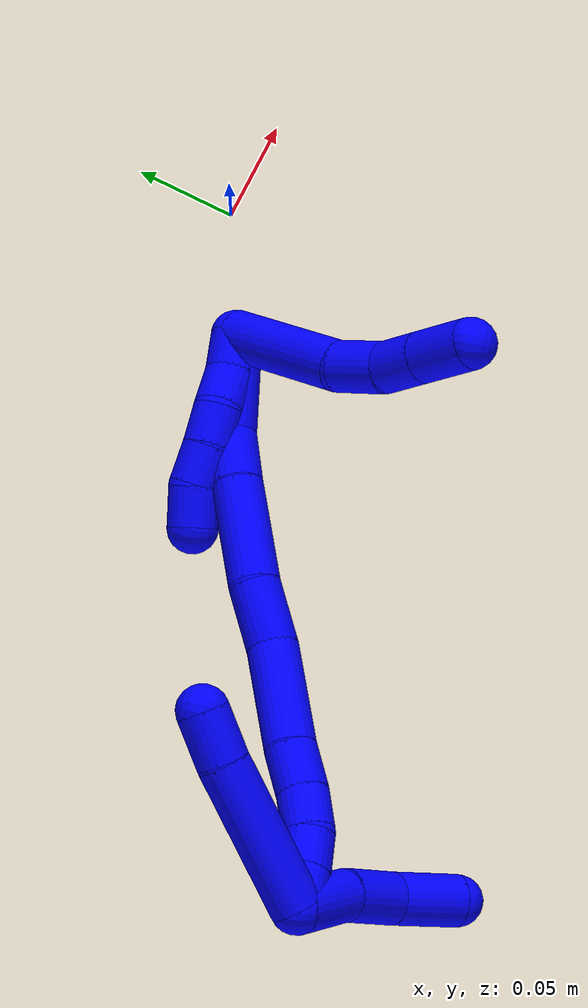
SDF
<sdf version="1.7">
 <world name="default">
  <model name="1">
   <static>0</static>
   <link name="1">
    <collision name="collision-cylinder-e_1_2_8">
     <pose>-0.016929 0.003383 0.030576 -0.110182 -0.503087 0.028342</pose>
     <geometry><cylinder><radius>0.0125</radius><length>0.070226</length></cylinder></geometry>
     <surface>
      <friction><ode><mu>1.16</mu><mu2>1.16</mu2><slip1>0</slip1><slip2>0</slip2></ode></friction>
      <contact><ode><kp>1e+06</kp><kd>1</kd><max_vel>0</max_vel><min_depth>0.001</min_depth></ode></contact>
     </surface>
    </collision>
    <visual name="visual-cylinder-e_1_2_8">
     <pose>-0.016929 0.003383 0.030576 -0.110182 -0.503087 0.028342</pose>
     <geometry><cylinder><radius>0.0125</radius><length>0.070226</length></cylinder></geometry>
     <material><ambient>0 0 1 1</ambient></material>
    </visual>
    <collision name="collision-cylinder-e_2_8_9">
     <pose>-0.037752 0.01012 0.073448 -0.266308 -0.296461 0.039998</pose>
     <geometry><cylinder><radius>0.0125</radius><length>0.026655</length></cylinder></geometry>
     <surface>
      <friction><ode><mu>1.16</mu><mu2>1.16</mu2><slip1>0</slip1><slip2>0</slip2></ode></friction>
      <contact><ode><kp>1e+06</kp><kd>1</kd><max_vel>0</max_vel><min_depth>0.001</min_depth></ode></contact>
     </surface>
    </collision>
    <visual name="visual-cylinder-e_2_8_9">
     <pose>-0.037752 0.01012 0.073448 -0.266308 -0.296461 0.039998</pose>
     <geometry><cylinder><radius>0.0125</radius><length>0.026655</length></cylinder></geometry>
     <material><ambient>0 0 1 1</ambient></material>
    </visual>
    <collision name="collision-cylinder-e_3_9_10">
     <pose>-0.045488 0.019197 0.095241 -0.542389 -0.33369 0.093583</pose>
     <geometry><cylinder><radius>0.0125</radius><length>0.023469</length></cylinder></geometry>
     <surface>
      <friction><ode><mu>1.16</mu><mu2>1.16</mu2><slip1>0</slip1><slip2>0</slip2></ode></friction>
      <contact><ode><kp>1e+06</kp><kd>1</kd><max_vel>0</max_vel><min_depth>0.001</min_depth></ode></contact>
     </surface>
    </collision>
    <visual name="visual-cylinder-e_3_9_10">
     <pose>-0.045488 0.019197 0.095241 -0.542389 -0.33369 0.093583</pose>
     <geometry><cylinder><radius>0.0125</radius><length>0.023469</length></cylinder></geometry>
     <material><ambient>0 0 1 1</ambient></material>
    </visual>
    <collision name="collision-cylinder-e_4_10_6">
     <pose>-0.054159 0.032124 0.116761 -0.539784 -0.331678 0.09254</pose>
     <geometry><cylinder><radius>0.0125</radius><length>0.029651</length></cylinder></geometry>
     <surface>
      <friction><ode><mu>1.16</mu><mu2>1.16</mu2><slip1>0</slip1><slip2>0</slip2></ode></friction>
      <contact><ode><kp>1e+06</kp><kd>1</kd><max_vel>0</max_vel><min_depth>0.001</min_depth></ode></contact>
     </surface>
    </collision>
    <visual name="visual-cylinder-e_4_10_6">
     <pose>-0.054159 0.032124 0.116761 -0.539784 -0.331678 0.09254</pose>
     <geometry><cylinder><radius>0.0125</radius><length>0.029651</length></cylinder></geometry>
     <material><ambient>0 0 1 1</ambient></material>
    </visual>
    <collision name="collision-cylinder-e_1_2_11">
     <pose>-0.006022 -0.007878 0.001296 1.4078 -0.646197 -0.553917</pose>
     <geometry><cylinder><radius>0.0125</radius><length>0.02</length></cylinder></geometry>
     <surface>
      <friction><ode><mu>1.16</mu><mu2>1.16</mu2><slip1>0</slip1><slip2>0</slip2></ode></friction>
      <contact><ode><kp>1e+06</kp><kd>1</kd><max_vel>0</max_vel><min_depth>0.001</min_depth></ode></contact>
     </surface>
    </collision>
    <visual name="visual-cylinder-e_1_2_11">
     <pose>-0.006022 -0.007878 0.001296 1.4078 -0.646197 -0.553917</pose>
     <geometry><cylinder><radius>0.0125</radius><length>0.02</length></cylinder></geometry>
     <material><ambient>0 0 1 1</ambient></material>
    </visual>
    <collision name="collision-cylinder-e_2_11_12">
     <pose>-0.019409 -0.022513 0.002871 1.52944 -0.828041 -0.797996</pose>
     <geometry><cylinder><radius>0.0125</radius><length>0.02</length></cylinder></geometry>
     <surface>
      <friction><ode><mu>1.16</mu><mu2>1.16</mu2><slip1>0</slip1><slip2>0</slip2></ode></friction>
      <contact><ode><kp>1e+06</kp><kd>1</kd><max_vel>0</max_vel><min_depth>0.001</min_depth></ode></contact>
     </surface>
    </collision>
    <visual name="visual-cylinder-e_2_11_12">
     <pose>-0.019409 -0.022513 0.002871 1.52944 -0.828041 -0.797996</pose>
     <geometry><cylinder><radius>0.0125</radius><length>0.02</length></cylinder></geometry>
     <material><ambient>0 0 1 1</ambient></material>
    </visual>
    <collision name="collision-cylinder-e_3_12_13">
     <pose>-0.032234 -0.037649 0.003094 1.57758 -0.577449 -0.581162</pose>
     <geometry><cylinder><radius>0.0125</radius><length>0.02</length></cylinder></geometry>
     <surface>
      <friction><ode><mu>1.16</mu><mu2>1.16</mu2><slip1>0</slip1><slip2>0</slip2></ode></friction>
      <contact><ode><kp>1e+06</kp><kd>1</kd><max_vel>0</max_vel><min_depth>0.001</min_depth></ode></contact>
     </surface>
    </collision>
    <visual name="visual-cylinder-e_3_12_13">
     <pose>-0.032234 -0.037649 0.003094 1.57758 -0.577449 -0.581162</pose>
     <geometry><cylinder><radius>0.0125</radius><length>0.02</length></cylinder></geometry>
     <material><ambient>0 0 1 1</ambient></material>
    </visual>
    <collision name="collision-cylinder-e_4_13_14">
     <pose>-0.042366 -0.054818 0.002094 1.67762 -0.486199 -0.538627</pose>
     <geometry><cylinder><radius>0.0125</radius><length>0.02</length></cylinder></geometry>
     <surface>
      <friction><ode><mu>1.16</mu><mu2>1.16</mu2><slip1>0</slip1><slip2>0</slip2></ode></friction>
      <contact><ode><kp>1e+06</kp><kd>1</kd><max_vel>0</max_vel><min_depth>0.001</min_depth></ode></contact>
     </surface>
    </collision>
    <visual name="visual-cylinder-e_4_13_14">
     <pose>-0.042366 -0.054818 0.002094 1.67762 -0.486199 -0.538627</pose>
     <geometry><cylinder><radius>0.0125</radius><length>0.02</length></cylinder></geometry>
     <material><ambient>0 0 1 1</ambient></material>
    </visual>
    <collision name="collision-cylinder-e_5_14_5">
     <pose>-0.050513 -0.072815 0.002937 1.37922 -0.354821 -0.293596</pose>
     <geometry><cylinder><radius>0.0125</radius><length>0.02</length></cylinder></geometry>
     <surface>
      <friction><ode><mu>1.16</mu><mu2>1.16</mu2><slip1>0</slip1><slip2>0</slip2></ode></friction>
      <contact><ode><kp>1e+06</kp><kd>1</kd><max_vel>0</max_vel><min_depth>0.001</min_depth></ode></contact>
     </surface>
    </collision>
    <visual name="visual-cylinder-e_5_14_5">
     <pose>-0.050513 -0.072815 0.002937 1.37922 -0.354821 -0.293596</pose>
     <geometry><cylinder><radius>0.0125</radius><length>0.02</length></cylinder></geometry>
     <material><ambient>0 0 1 1</ambient></material>
    </visual>
    <collision name="collision-cylinder-e_1_2_15">
     <pose>-0.012643 -0.02079 0.005077 1.33128 -0.533608 -0.422801</pose>
     <geometry><cylinder><radius>0.0125</radius><length>0.049712</length></cylinder></geometry>
     <surface>
      <friction><ode><mu>1.16</mu><mu2>1.16</mu2><slip1>0</slip1><slip2>0</slip2></ode></friction>
      <contact><ode><kp>1e+06</kp><kd>1</kd><max_vel>0</max_vel><min_depth>0.001</min_depth></ode></contact>
     </surface>
    </collision>
    <visual name="visual-cylinder-e_1_2_15">
     <pose>-0.012643 -0.02079 0.005077 1.33128 -0.533608 -0.422801</pose>
     <geometry><cylinder><radius>0.0125</radius><length>0.049712</length></cylinder></geometry>
     <material><ambient>0 0 1 1</ambient></material>
    </visual>
    <collision name="collision-cylinder-e_2_15_16">
     <pose>-0.034652 -0.050375 0.015882 0.993596 -0.728547 -0.407691</pose>
     <geometry><cylinder><radius>0.0125</radius><length>0.028136</length></cylinder></geometry>
     <surface>
      <friction><ode><mu>1.16</mu><mu2>1.16</mu2><slip1>0</slip1><slip2>0</slip2></ode></friction>
      <contact><ode><kp>1e+06</kp><kd>1</kd><max_vel>0</max_vel><min_depth>0.001</min_depth></ode></contact>
     </surface>
    </collision>
    <visual name="visual-cylinder-e_2_15_16">
     <pose>-0.034652 -0.050375 0.015882 0.993596 -0.728547 -0.407691</pose>
     <geometry><cylinder><radius>0.0125</radius><length>0.028136</length></cylinder></geometry>
     <material><ambient>0 0 1 1</ambient></material>
    </visual>
    <collision name="collision-cylinder-e_3_16_17">
     <pose>-0.060017 -0.076816 0.033173 0.990664 -0.648843 -0.35946</pose>
     <geometry><cylinder><radius>0.0125</radius><length>0.052951</length></cylinder></geometry>
     <surface>
      <friction><ode><mu>1.16</mu><mu2>1.16</mu2><slip1>0</slip1><slip2>0</slip2></ode></friction>
      <contact><ode><kp>1e+06</kp><kd>1</kd><max_vel>0</max_vel><min_depth>0.001</min_depth></ode></contact>
     </surface>
    </collision>
    <visual name="visual-cylinder-e_3_16_17">
     <pose>-0.060017 -0.076816 0.033173 0.990664 -0.648843 -0.35946</pose>
     <geometry><cylinder><radius>0.0125</radius><length>0.052951</length></cylinder></geometry>
     <material><ambient>0 0 1 1</ambient></material>
    </visual>
    <collision name="collision-cylinder-e_4_17_18">
     <pose>-0.083677 -0.106042 0.0531 0.94534 -0.492257 -0.255515</pose>
     <geometry><cylinder><radius>0.0125</radius><length>0.032423</length></cylinder></geometry>
     <surface>
      <friction><ode><mu>1.16</mu><mu2>1.16</mu2><slip1>0</slip1><slip2>0</slip2></ode></friction>
      <contact><ode><kp>1e+06</kp><kd>1</kd><max_vel>0</max_vel><min_depth>0.001</min_depth></ode></contact>
     </surface>
    </collision>
    <visual name="visual-cylinder-e_4_17_18">
     <pose>-0.083677 -0.106042 0.0531 0.94534 -0.492257 -0.255515</pose>
     <geometry><cylinder><radius>0.0125</radius><length>0.032423</length></cylinder></geometry>
     <material><ambient>0 0 1 1</ambient></material>
    </visual>
    <collision name="collision-cylinder-e_5_18_19">
     <pose>-0.10867 -0.133785 0.073221 0.941862 -0.714399 -0.375553</pose>
     <geometry><cylinder><radius>0.0125</radius><length>0.052908</length></cylinder></geometry>
     <surface>
      <friction><ode><mu>1.16</mu><mu2>1.16</mu2><slip1>0</slip1><slip2>0</slip2></ode></friction>
      <contact><ode><kp>1e+06</kp><kd>1</kd><max_vel>0</max_vel><min_depth>0.001</min_depth></ode></contact>
     </surface>
    </collision>
    <visual name="visual-cylinder-e_5_18_19">
     <pose>-0.10867 -0.133785 0.073221 0.941862 -0.714399 -0.375553</pose>
     <geometry><cylinder><radius>0.0125</radius><length>0.052908</length></cylinder></geometry>
     <material><ambient>0 0 1 1</ambient></material>
    </visual>
    <collision name="collision-cylinder-e_6_19_20">
     <pose>-0.132658 -0.157341 0.090939 0.892343 -0.611292 -0.299605</pose>
     <geometry><cylinder><radius>0.0125</radius><length>0.023196</length></cylinder></geometry>
     <surface>
      <friction><ode><mu>1.16</mu><mu2>1.16</mu2><slip1>0</slip1><slip2>0</slip2></ode></friction>
      <contact><ode><kp>1e+06</kp><kd>1</kd><max_vel>0</max_vel><min_depth>0.001</min_depth></ode></contact>
     </surface>
    </collision>
    <visual name="visual-cylinder-e_6_19_20">
     <pose>-0.132658 -0.157341 0.090939 0.892343 -0.611292 -0.299605</pose>
     <geometry><cylinder><radius>0.0125</radius><length>0.023196</length></cylinder></geometry>
     <material><ambient>0 0 1 1</ambient></material>
    </visual>
    <collision name="collision-cylinder-e_7_20_21">
     <pose>-0.146164 -0.170914 0.10121 0.961716 -0.737841 -0.398062</pose>
     <geometry><cylinder><radius>0.0125</radius><length>0.020364</length></cylinder></geometry>
     <surface>
      <friction><ode><mu>1.16</mu><mu2>1.16</mu2><slip1>0</slip1><slip2>0</slip2></ode></friction>
      <contact><ode><kp>1e+06</kp><kd>1</kd><max_vel>0</max_vel><min_depth>0.001</min_depth></ode></contact>
     </surface>
    </collision>
    <visual name="visual-cylinder-e_7_20_21">
     <pose>-0.146164 -0.170914 0.10121 0.961716 -0.737841 -0.398062</pose>
     <geometry><cylinder><radius>0.0125</radius><length>0.020364</length></cylinder></geometry>
     <material><ambient>0 0 1 1</ambient></material>
    </visual>
    <collision name="collision-cylinder-e_8_21_22">
     <pose>-0.15989 -0.184128 0.107349 1.31644 -0.757665 -0.597197</pose>
     <geometry><cylinder><radius>0.0125</radius><length>0.020011</length></cylinder></geometry>
     <surface>
      <friction><ode><mu>1.16</mu><mu2>1.16</mu2><slip1>0</slip1><slip2>0</slip2></ode></friction>
      <contact><ode><kp>1e+06</kp><kd>1</kd><max_vel>0</max_vel><min_depth>0.001</min_depth></ode></contact>
     </surface>
    </collision>
    <visual name="visual-cylinder-e_8_21_22">
     <pose>-0.15989 -0.184128 0.107349 1.31644 -0.757665 -0.597197</pose>
     <geometry><cylinder><radius>0.0125</radius><length>0.020011</length></cylinder></geometry>
     <material><ambient>0 0 1 1</ambient></material>
    </visual>
    <collision name="collision-cylinder-e_9_22_1">
     <pose>-0.175815 -0.195464 0.110794 1.21142 -1.10095 -0.803839</pose>
     <geometry><cylinder><radius>0.0125</radius><length>0.020299</length></cylinder></geometry>
     <surface>
      <friction><ode><mu>1.16</mu><mu2>1.16</mu2><slip1>0</slip1><slip2>0</slip2></ode></friction>
      <contact><ode><kp>1e+06</kp><kd>1</kd><max_vel>0</max_vel><min_depth>0.001</min_depth></ode></contact>
     </surface>
    </collision>
    <visual name="visual-cylinder-e_9_22_1">
     <pose>-0.175815 -0.195464 0.110794 1.21142 -1.10095 -0.803839</pose>
     <geometry><cylinder><radius>0.0125</radius><length>0.020299</length></cylinder></geometry>
     <material><ambient>0 0 1 1</ambient></material>
    </visual>
    <collision name="collision-cylinder-e_1_1_23">
     <pose>-0.182771 -0.169652 0.090621 -2.19716 0.05627 -0.110087</pose>
     <geometry><cylinder><radius>0.0125</radius><length>0.074459</length></cylinder></geometry>
     <surface>
      <friction><ode><mu>1.16</mu><mu2>1.16</mu2><slip1>0</slip1><slip2>0</slip2></ode></friction>
      <contact><ode><kp>1e+06</kp><kd>1</kd><max_vel>0</max_vel><min_depth>0.001</min_depth></ode></contact>
     </surface>
    </collision>
    <visual name="visual-cylinder-e_1_1_23">
     <pose>-0.182771 -0.169652 0.090621 -2.19716 0.05627 -0.110087</pose>
     <geometry><cylinder><radius>0.0125</radius><length>0.074459</length></cylinder></geometry>
     <material><ambient>0 0 1 1</ambient></material>
    </visual>
    <collision name="collision-cylinder-e_2_23_4">
     <pose>-0.178706 -0.128928 0.062002 -2.14272 0.154961 -0.282707</pose>
     <geometry><cylinder><radius>0.0125</radius><length>0.025541</length></cylinder></geometry>
     <surface>
      <friction><ode><mu>1.16</mu><mu2>1.16</mu2><slip1>0</slip1><slip2>0</slip2></ode></friction>
      <contact><ode><kp>1e+06</kp><kd>1</kd><max_vel>0</max_vel><min_depth>0.001</min_depth></ode></contact>
     </surface>
    </collision>
    <visual name="visual-cylinder-e_2_23_4">
     <pose>-0.178706 -0.128928 0.062002 -2.14272 0.154961 -0.282707</pose>
     <geometry><cylinder><radius>0.0125</radius><length>0.025541</length></cylinder></geometry>
     <material><ambient>0 0 1 1</ambient></material>
    </visual>
    <collision name="collision-cylinder-e_1_1_24">
     <pose>-0.16941 -0.201505 0.119498 0.240618 1.12964 0.152918</pose>
     <geometry><cylinder><radius>0.0125</radius><length>0.034182</length></cylinder></geometry>
     <surface>
      <friction><ode><mu>1.16</mu><mu2>1.16</mu2><slip1>0</slip1><slip2>0</slip2></ode></friction>
      <contact><ode><kp>1e+06</kp><kd>1</kd><max_vel>0</max_vel><min_depth>0.001</min_depth></ode></contact>
     </surface>
    </collision>
    <visual name="visual-cylinder-e_1_1_24">
     <pose>-0.16941 -0.201505 0.119498 0.240618 1.12964 0.152918</pose>
     <geometry><cylinder><radius>0.0125</radius><length>0.034182</length></cylinder></geometry>
     <material><ambient>0 0 1 1</ambient></material>
    </visual>
    <collision name="collision-cylinder-e_2_24_25">
     <pose>-0.141519 -0.207508 0.134961 0.470848 0.923607 0.237643</pose>
     <geometry><cylinder><radius>0.0125</radius><length>0.031176</length></cylinder></geometry>
     <surface>
      <friction><ode><mu>1.16</mu><mu2>1.16</mu2><slip1>0</slip1><slip2>0</slip2></ode></friction>
      <contact><ode><kp>1e+06</kp><kd>1</kd><max_vel>0</max_vel><min_depth>0.001</min_depth></ode></contact>
     </surface>
    </collision>
    <visual name="visual-cylinder-e_2_24_25">
     <pose>-0.141519 -0.207508 0.134961 0.470848 0.923607 0.237643</pose>
     <geometry><cylinder><radius>0.0125</radius><length>0.031176</length></cylinder></geometry>
     <material><ambient>0 0 1 1</ambient></material>
    </visual>
    <collision name="collision-cylinder-e_3_25_3">
     <pose>-0.11787 -0.213992 0.156351 0.168998 0.704118 0.062212</pose>
     <geometry><cylinder><radius>0.0125</radius><length>0.034642</length></cylinder></geometry>
     <surface>
      <friction><ode><mu>1.16</mu><mu2>1.16</mu2><slip1>0</slip1><slip2>0</slip2></ode></friction>
      <contact><ode><kp>1e+06</kp><kd>1</kd><max_vel>0</max_vel><min_depth>0.001</min_depth></ode></contact>
     </surface>
    </collision>
    <visual name="visual-cylinder-e_3_25_3">
     <pose>-0.11787 -0.213992 0.156351 0.168998 0.704118 0.062212</pose>
     <geometry><cylinder><radius>0.0125</radius><length>0.034642</length></cylinder></geometry>
     <material><ambient>0 0 1 1</ambient></material>
    </visual>
    <collision name="collision-sphere-3">
     <pose>-0.106658 -0.216212 0.169364 0 -0 0</pose>
     <geometry><sphere><radius>0.0125</radius></sphere></geometry>
     <surface>
      <friction><ode><mu>1.16</mu><mu2>1.16</mu2><slip1>0</slip1><slip2>0</slip2></ode></friction>
      <contact><ode><kp>1e+06</kp><kd>1</kd><max_vel>0</max_vel><min_depth>0.001</min_depth></ode></contact>
     </surface>
    </collision>
    <visual name="visual-sphere-3">
     <pose>-0.106658 -0.216212 0.169364 0 -0 0</pose>
     <geometry><sphere><radius>0.0125</radius></sphere></geometry>
     <material><ambient>0 0 1 1</ambient></material>
    </visual>
    <collision name="collision-sphere-25">
     <pose>-0.129083 -0.211771 0.143337 0 -0 0</pose>
     <geometry><sphere><radius>0.0125</radius></sphere></geometry>
     <surface>
      <friction><ode><mu>1.16</mu><mu2>1.16</mu2><slip1>0</slip1><slip2>0</slip2></ode></friction>
      <contact><ode><kp>1e+06</kp><kd>1</kd><max_vel>0</max_vel><min_depth>0.001</min_depth></ode></contact>
     </surface>
    </collision>
    <visual name="visual-sphere-25">
     <pose>-0.129083 -0.211771 0.143337 0 -0 0</pose>
     <geometry><sphere><radius>0.0125</radius></sphere></geometry>
     <material><ambient>0 0 1 1</ambient></material>
    </visual>
    <collision name="collision-sphere-24">
     <pose>-0.153955 -0.203244 0.126585 0 -0 0</pose>
     <geometry><sphere><radius>0.0125</radius></sphere></geometry>
     <surface>
      <friction><ode><mu>1.16</mu><mu2>1.16</mu2><slip1>0</slip1><slip2>0</slip2></ode></friction>
      <contact><ode><kp>1e+06</kp><kd>1</kd><max_vel>0</max_vel><min_depth>0.001</min_depth></ode></contact>
     </surface>
    </collision>
    <visual name="visual-sphere-24">
     <pose>-0.153955 -0.203244 0.126585 0 -0 0</pose>
     <geometry><sphere><radius>0.0125</radius></sphere></geometry>
     <material><ambient>0 0 1 1</ambient></material>
    </visual>
    <collision name="collision-sphere-4">
     <pose>-0.176735 -0.118318 0.055173 0 -0 0</pose>
     <geometry><sphere><radius>0.0125</radius></sphere></geometry>
     <surface>
      <friction><ode><mu>1.16</mu><mu2>1.16</mu2><slip1>0</slip1><slip2>0</slip2></ode></friction>
      <contact><ode><kp>1e+06</kp><kd>1</kd><max_vel>0</max_vel><min_depth>0.001</min_depth></ode></contact>
     </surface>
    </collision>
    <visual name="visual-sphere-4">
     <pose>-0.176735 -0.118318 0.055173 0 -0 0</pose>
     <geometry><sphere><radius>0.0125</radius></sphere></geometry>
     <material><ambient>0 0 1 1</ambient></material>
    </visual>
    <collision name="collision-sphere-23">
     <pose>-0.180677 -0.139537 0.068831 0 -0 0</pose>
     <geometry><sphere><radius>0.0125</radius></sphere></geometry>
     <surface>
      <friction><ode><mu>1.16</mu><mu2>1.16</mu2><slip1>0</slip1><slip2>0</slip2></ode></friction>
      <contact><ode><kp>1e+06</kp><kd>1</kd><max_vel>0</max_vel><min_depth>0.001</min_depth></ode></contact>
     </surface>
    </collision>
    <visual name="visual-sphere-23">
     <pose>-0.180677 -0.139537 0.068831 0 -0 0</pose>
     <geometry><sphere><radius>0.0125</radius></sphere></geometry>
     <material><ambient>0 0 1 1</ambient></material>
    </visual>
    <collision name="collision-sphere-1">
     <pose>-0.184865 -0.199766 0.11241 0 -0 0</pose>
     <geometry><sphere><radius>0.0125</radius></sphere></geometry>
     <surface>
      <friction><ode><mu>1.16</mu><mu2>1.16</mu2><slip1>0</slip1><slip2>0</slip2></ode></friction>
      <contact><ode><kp>1e+06</kp><kd>1</kd><max_vel>0</max_vel><min_depth>0.001</min_depth></ode></contact>
     </surface>
    </collision>
    <visual name="visual-sphere-1">
     <pose>-0.184865 -0.199766 0.11241 0 -0 0</pose>
     <geometry><sphere><radius>0.0125</radius></sphere></geometry>
     <material><ambient>0 0 1 1</ambient></material>
    </visual>
    <collision name="collision-sphere-22">
     <pose>-0.166766 -0.191163 0.109178 0 -0 0</pose>
     <geometry><sphere><radius>0.0125</radius></sphere></geometry>
     <surface>
      <friction><ode><mu>1.16</mu><mu2>1.16</mu2><slip1>0</slip1><slip2>0</slip2></ode></friction>
      <contact><ode><kp>1e+06</kp><kd>1</kd><max_vel>0</max_vel><min_depth>0.001</min_depth></ode></contact>
     </surface>
    </collision>
    <visual name="visual-sphere-22">
     <pose>-0.166766 -0.191163 0.109178 0 -0 0</pose>
     <geometry><sphere><radius>0.0125</radius></sphere></geometry>
     <material><ambient>0 0 1 1</ambient></material>
    </visual>
    <collision name="collision-sphere-21">
     <pose>-0.153013 -0.177094 0.10552 0 -0 0</pose>
     <geometry><sphere><radius>0.0125</radius></sphere></geometry>
     <surface>
      <friction><ode><mu>1.16</mu><mu2>1.16</mu2><slip1>0</slip1><slip2>0</slip2></ode></friction>
      <contact><ode><kp>1e+06</kp><kd>1</kd><max_vel>0</max_vel><min_depth>0.001</min_depth></ode></contact>
     </surface>
    </collision>
    <visual name="visual-sphere-21">
     <pose>-0.153013 -0.177094 0.10552 0 -0 0</pose>
     <geometry><sphere><radius>0.0125</radius></sphere></geometry>
     <material><ambient>0 0 1 1</ambient></material>
    </visual>
    <collision name="collision-sphere-11">
     <pose>-0.012043 -0.015756 0.002591 0 -0 0</pose>
     <geometry><sphere><radius>0.0125</radius></sphere></geometry>
     <surface>
      <friction><ode><mu>1.16</mu><mu2>1.16</mu2><slip1>0</slip1><slip2>0</slip2></ode></friction>
      <contact><ode><kp>1e+06</kp><kd>1</kd><max_vel>0</max_vel><min_depth>0.001</min_depth></ode></contact>
     </surface>
    </collision>
    <visual name="visual-sphere-11">
     <pose>-0.012043 -0.015756 0.002591 0 -0 0</pose>
     <geometry><sphere><radius>0.0125</radius></sphere></geometry>
     <material><ambient>0 0 1 1</ambient></material>
    </visual>
    <collision name="collision-sphere-6">
     <pose>-0.058987 0.039328 0.128785 0 -0 0</pose>
     <geometry><sphere><radius>0.0125</radius></sphere></geometry>
     <surface>
      <friction><ode><mu>1.16</mu><mu2>1.16</mu2><slip1>0</slip1><slip2>0</slip2></ode></friction>
      <contact><ode><kp>1e+06</kp><kd>1</kd><max_vel>0</max_vel><min_depth>0.001</min_depth></ode></contact>
     </surface>
    </collision>
    <visual name="visual-sphere-6">
     <pose>-0.058987 0.039328 0.128785 0 -0 0</pose>
     <geometry><sphere><radius>0.0125</radius></sphere></geometry>
     <material><ambient>0 0 1 1</ambient></material>
    </visual>
    <collision name="collision-sphere-10">
     <pose>-0.049332 0.02492 0.104737 0 -0 0</pose>
     <geometry><sphere><radius>0.0125</radius></sphere></geometry>
     <surface>
      <friction><ode><mu>1.16</mu><mu2>1.16</mu2><slip1>0</slip1><slip2>0</slip2></ode></friction>
      <contact><ode><kp>1e+06</kp><kd>1</kd><max_vel>0</max_vel><min_depth>0.001</min_depth></ode></contact>
     </surface>
    </collision>
    <visual name="visual-sphere-10">
     <pose>-0.049332 0.02492 0.104737 0 -0 0</pose>
     <geometry><sphere><radius>0.0125</radius></sphere></geometry>
     <material><ambient>0 0 1 1</ambient></material>
    </visual>
    <collision name="collision-sphere-9">
     <pose>-0.041645 0.013474 0.085745 0 -0 0</pose>
     <geometry><sphere><radius>0.0125</radius></sphere></geometry>
     <surface>
      <friction><ode><mu>1.16</mu><mu2>1.16</mu2><slip1>0</slip1><slip2>0</slip2></ode></friction>
      <contact><ode><kp>1e+06</kp><kd>1</kd><max_vel>0</max_vel><min_depth>0.001</min_depth></ode></contact>
     </surface>
    </collision>
    <visual name="visual-sphere-9">
     <pose>-0.041645 0.013474 0.085745 0 -0 0</pose>
     <geometry><sphere><radius>0.0125</radius></sphere></geometry>
     <material><ambient>0 0 1 1</ambient></material>
    </visual>
    <collision name="collision-sphere-2">
     <geometry><sphere><radius>0.0125</radius></sphere></geometry>
     <surface>
      <friction><ode><mu>1.16</mu><mu2>1.16</mu2><slip1>0</slip1><slip2>0</slip2></ode></friction>
      <contact><ode><kp>1e+06</kp><kd>1</kd><max_vel>0</max_vel><min_depth>0.001</min_depth></ode></contact>
     </surface>
    </collision>
    <visual name="visual-sphere-2">
     <geometry><sphere><radius>0.0125</radius></sphere></geometry>
     <material><ambient>0 0 1 1</ambient></material>
    </visual>
    <collision name="collision-sphere-19">
     <pose>-0.126002 -0.149947 0.084979 0 -0 0</pose>
     <geometry><sphere><radius>0.0125</radius></sphere></geometry>
     <surface>
      <friction><ode><mu>1.16</mu><mu2>1.16</mu2><slip1>0</slip1><slip2>0</slip2></ode></friction>
      <contact><ode><kp>1e+06</kp><kd>1</kd><max_vel>0</max_vel><min_depth>0.001</min_depth></ode></contact>
     </surface>
    </collision>
    <visual name="visual-sphere-19">
     <pose>-0.126002 -0.149947 0.084979 0 -0 0</pose>
     <geometry><sphere><radius>0.0125</radius></sphere></geometry>
     <material><ambient>0 0 1 1</ambient></material>
    </visual>
    <collision name="collision-sphere-8">
     <pose>-0.033858 0.006765 0.061152 0 -0 0</pose>
     <geometry><sphere><radius>0.0125</radius></sphere></geometry>
     <surface>
      <friction><ode><mu>1.16</mu><mu2>1.16</mu2><slip1>0</slip1><slip2>0</slip2></ode></friction>
      <contact><ode><kp>1e+06</kp><kd>1</kd><max_vel>0</max_vel><min_depth>0.001</min_depth></ode></contact>
     </surface>
    </collision>
    <visual name="visual-sphere-8">
     <pose>-0.033858 0.006765 0.061152 0 -0 0</pose>
     <geometry><sphere><radius>0.0125</radius></sphere></geometry>
     <material><ambient>0 0 1 1</ambient></material>
    </visual>
    <collision name="collision-sphere-12">
     <pose>-0.026775 -0.029271 0.00315 0 -0 0</pose>
     <geometry><sphere><radius>0.0125</radius></sphere></geometry>
     <surface>
      <friction><ode><mu>1.16</mu><mu2>1.16</mu2><slip1>0</slip1><slip2>0</slip2></ode></friction>
      <contact><ode><kp>1e+06</kp><kd>1</kd><max_vel>0</max_vel><min_depth>0.001</min_depth></ode></contact>
     </surface>
    </collision>
    <visual name="visual-sphere-12">
     <pose>-0.026775 -0.029271 0.00315 0 -0 0</pose>
     <geometry><sphere><radius>0.0125</radius></sphere></geometry>
     <material><ambient>0 0 1 1</ambient></material>
    </visual>
    <collision name="collision-sphere-13">
     <pose>-0.037693 -0.046028 0.003037 0 -0 0</pose>
     <geometry><sphere><radius>0.0125</radius></sphere></geometry>
     <surface>
      <friction><ode><mu>1.16</mu><mu2>1.16</mu2><slip1>0</slip1><slip2>0</slip2></ode></friction>
      <contact><ode><kp>1e+06</kp><kd>1</kd><max_vel>0</max_vel><min_depth>0.001</min_depth></ode></contact>
     </surface>
    </collision>
    <visual name="visual-sphere-13">
     <pose>-0.037693 -0.046028 0.003037 0 -0 0</pose>
     <geometry><sphere><radius>0.0125</radius></sphere></geometry>
     <material><ambient>0 0 1 1</ambient></material>
    </visual>
    <collision name="collision-sphere-14">
     <pose>-0.047038 -0.063609 0.001152 0 -0 0</pose>
     <geometry><sphere><radius>0.0125</radius></sphere></geometry>
     <surface>
      <friction><ode><mu>1.16</mu><mu2>1.16</mu2><slip1>0</slip1><slip2>0</slip2></ode></friction>
      <contact><ode><kp>1e+06</kp><kd>1</kd><max_vel>0</max_vel><min_depth>0.001</min_depth></ode></contact>
     </surface>
    </collision>
    <visual name="visual-sphere-14">
     <pose>-0.047038 -0.063609 0.001152 0 -0 0</pose>
     <geometry><sphere><radius>0.0125</radius></sphere></geometry>
     <material><ambient>0 0 1 1</ambient></material>
    </visual>
    <collision name="collision-sphere-5">
     <pose>-0.053987 -0.08202 0.004722 0 -0 0</pose>
     <geometry><sphere><radius>0.0125</radius></sphere></geometry>
     <surface>
      <friction><ode><mu>1.16</mu><mu2>1.16</mu2><slip1>0</slip1><slip2>0</slip2></ode></friction>
      <contact><ode><kp>1e+06</kp><kd>1</kd><max_vel>0</max_vel><min_depth>0.001</min_depth></ode></contact>
     </surface>
    </collision>
    <visual name="visual-sphere-5">
     <pose>-0.053987 -0.08202 0.004722 0 -0 0</pose>
     <geometry><sphere><radius>0.0125</radius></sphere></geometry>
     <material><ambient>0 0 1 1</ambient></material>
    </visual>
    <collision name="collision-sphere-15">
     <pose>-0.025286 -0.041579 0.010154 0 -0 0</pose>
     <geometry><sphere><radius>0.0125</radius></sphere></geometry>
     <surface>
      <friction><ode><mu>1.16</mu><mu2>1.16</mu2><slip1>0</slip1><slip2>0</slip2></ode></friction>
      <contact><ode><kp>1e+06</kp><kd>1</kd><max_vel>0</max_vel><min_depth>0.001</min_depth></ode></contact>
     </surface>
    </collision>
    <visual name="visual-sphere-15">
     <pose>-0.025286 -0.041579 0.010154 0 -0 0</pose>
     <geometry><sphere><radius>0.0125</radius></sphere></geometry>
     <material><ambient>0 0 1 1</ambient></material>
    </visual>
    <collision name="collision-sphere-16">
     <pose>-0.044018 -0.059172 0.021609 0 -0 0</pose>
     <geometry><sphere><radius>0.0125</radius></sphere></geometry>
     <surface>
      <friction><ode><mu>1.16</mu><mu2>1.16</mu2><slip1>0</slip1><slip2>0</slip2></ode></friction>
      <contact><ode><kp>1e+06</kp><kd>1</kd><max_vel>0</max_vel><min_depth>0.001</min_depth></ode></contact>
     </surface>
    </collision>
    <visual name="visual-sphere-16">
     <pose>-0.044018 -0.059172 0.021609 0 -0 0</pose>
     <geometry><sphere><radius>0.0125</radius></sphere></geometry>
     <material><ambient>0 0 1 1</ambient></material>
    </visual>
    <collision name="collision-sphere-17">
     <pose>-0.076015 -0.09446 0.044736 0 -0 0</pose>
     <geometry><sphere><radius>0.0125</radius></sphere></geometry>
     <surface>
      <friction><ode><mu>1.16</mu><mu2>1.16</mu2><slip1>0</slip1><slip2>0</slip2></ode></friction>
      <contact><ode><kp>1e+06</kp><kd>1</kd><max_vel>0</max_vel><min_depth>0.001</min_depth></ode></contact>
     </surface>
    </collision>
    <visual name="visual-sphere-17">
     <pose>-0.076015 -0.09446 0.044736 0 -0 0</pose>
     <geometry><sphere><radius>0.0125</radius></sphere></geometry>
     <material><ambient>0 0 1 1</ambient></material>
    </visual>
    <collision name="collision-sphere-18">
     <pose>-0.091339 -0.117624 0.061464 0 -0 0</pose>
     <geometry><sphere><radius>0.0125</radius></sphere></geometry>
     <surface>
      <friction><ode><mu>1.16</mu><mu2>1.16</mu2><slip1>0</slip1><slip2>0</slip2></ode></friction>
      <contact><ode><kp>1e+06</kp><kd>1</kd><max_vel>0</max_vel><min_depth>0.001</min_depth></ode></contact>
     </surface>
    </collision>
    <visual name="visual-sphere-18">
     <pose>-0.091339 -0.117624 0.061464 0 -0 0</pose>
     <geometry><sphere><radius>0.0125</radius></sphere></geometry>
     <material><ambient>0 0 1 1</ambient></material>
    </visual>
    <collision name="collision-sphere-20">
     <pose>-0.139314 -0.164735 0.0969 0 -0 0</pose>
     <geometry><sphere><radius>0.0125</radius></sphere></geometry>
     <surface>
      <friction><ode><mu>1.16</mu><mu2>1.16</mu2><slip1>0</slip1><slip2>0</slip2></ode></friction>
      <contact><ode><kp>1e+06</kp><kd>1</kd><max_vel>0</max_vel><min_depth>0.001</min_depth></ode></contact>
     </surface>
    </collision>
    <visual name="visual-sphere-20">
     <pose>-0.139314 -0.164735 0.0969 0 -0 0</pose>
     <geometry><sphere><radius>0.0125</radius></sphere></geometry>
     <material><ambient>0 0 1 1</ambient></material>
    </visual>
    <inertial>
     <pose>-0.08854 -0.094021 0.064942 0 -0 0</pose>
     <mass>0.75</mass>
     <inertia><ixx>8.9e-05</ixx><ixy>0</ixy><ixz>0</ixz><iyy>3.1e-05</iyy><iyz>0</iyz><izz>6.8e-05</izz></inertia>
    </inertial>
   </link>
   <pose>-0.056778 -0.031767 0.012914 1.25023 0.95078 -0.065929</pose>
  </model>
 </world>
</sdf>
